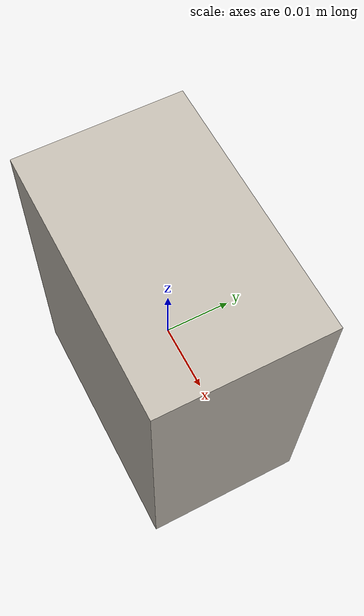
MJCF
<mujoco model="claratin">
  <asset>
    <texture type="cube" file="textures/smallboxes/claratin.png" rgb1="1 1 1" name="tex-claratin"/>
    <material name="claratin" reflectance="0.5" texrepeat="3 3" texture="tex-claratin" texuniform="false"/>
  </asset>
  <worldbody>
    <body>
      <body name="collision">
        <geom pos="0 0 0" size="0.02 0.0125 0.025" type="box" solimp="0.998 0.998 0.001" solref="0.001 1" density="150" friction="0.95 0.3 0.1" material="claratin" group="1" condim="4"/>
      </body>
      <site rgba="0 0 0 0" size="0.005" pos="0 0 -0.05" name="bottom_site"/>
      <site rgba="0 0 0 0" size="0.005" pos="0 0 0.03" name="top_site"/>
      <site rgba="0 0 0 0" size="0.005" pos="0.06 0.06 0" name="horizontal_radius_site"/>
    </body>
  </worldbody>
</mujoco>
